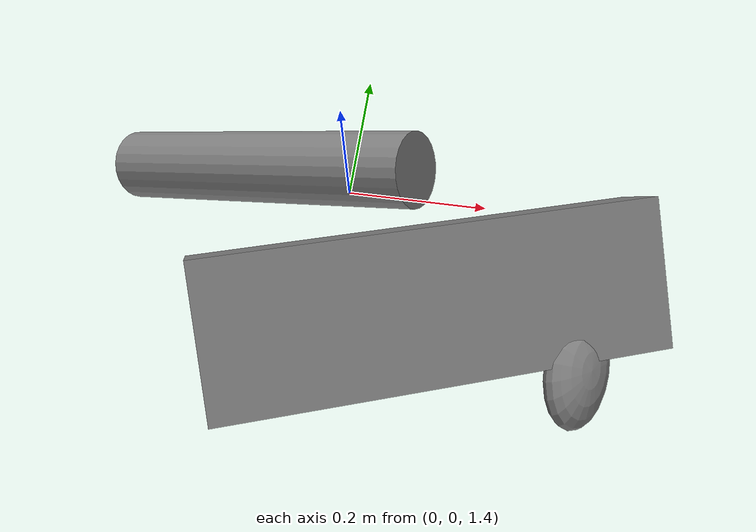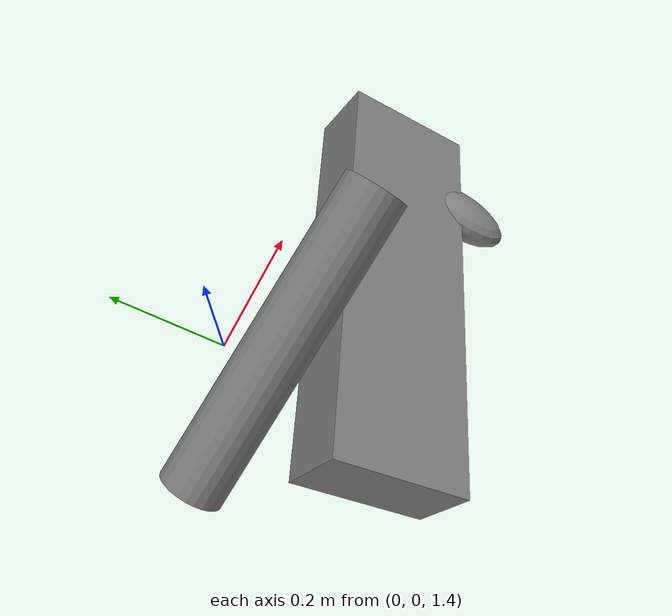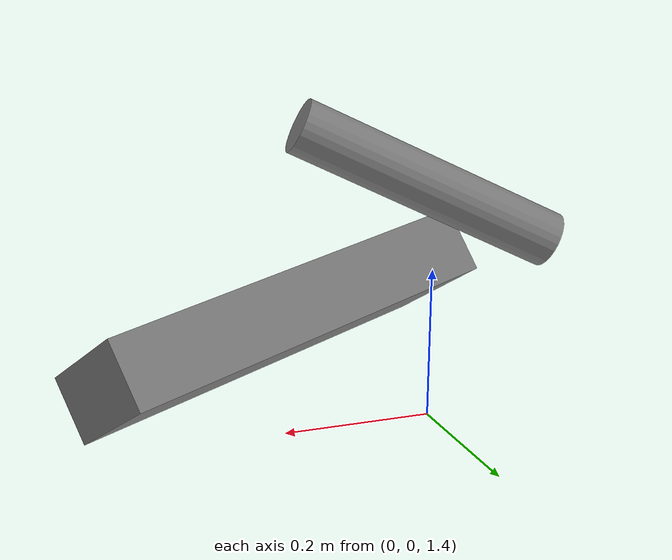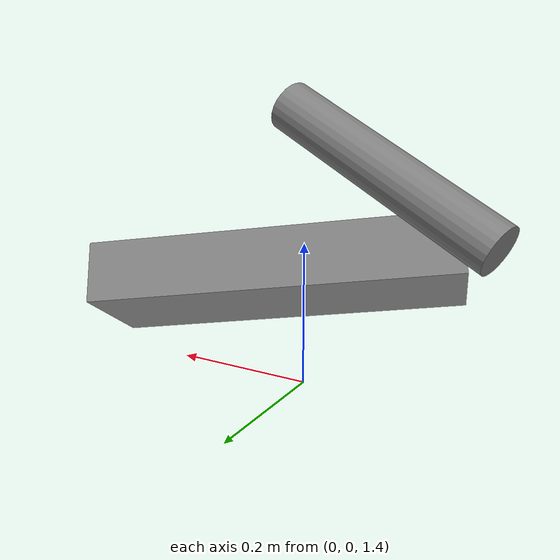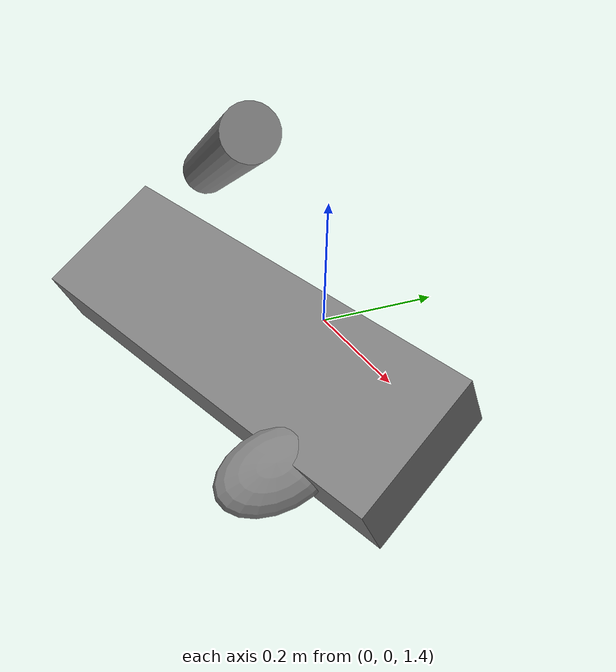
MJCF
<!-- Copyright 2026 -- CONTRIBUTORS. See LICENSE. -->
<!-- A free body of three geoms off its frame, turned, spinning in the air:
     its inertia combined and found on principal axes. -->
<mujoco model="free body">
  <option gravity="0 0 0"/>
  <worldbody>
    <body name="tumbler" pos="0.1 -0.2 1.5" axisangle="1 1 0 25">
      <freejoint name="root"/>
      <geom name="slab" type="box" size="0.3 0.1 0.05" pos="0.05 0 0" euler="10 0 20"/>
      <geom name="post" type="cylinder" size="0.04 0.2" pos="-0.2 0.1 0.1" zaxis="1 0 1"/>
      <geom name="knob" type="ellipsoid" size="0.08 0.05 0.03" pos="0.25 -0.05 0.02"
            xyaxes="0 1 0 -1 0 0.3" density="3000"/>
    </body>
  </worldbody>
</mujoco>
